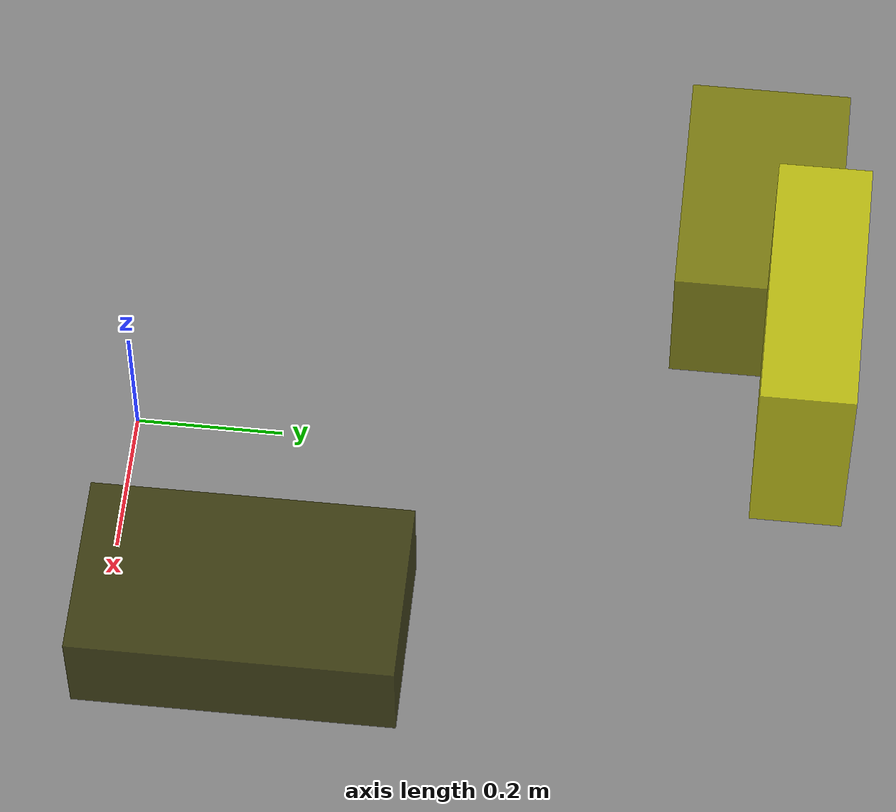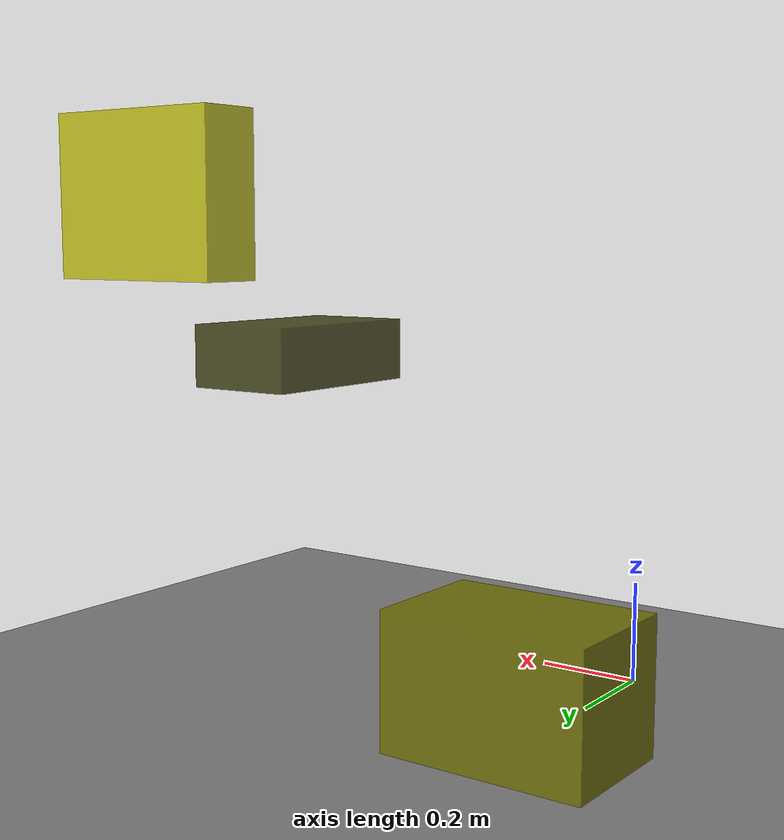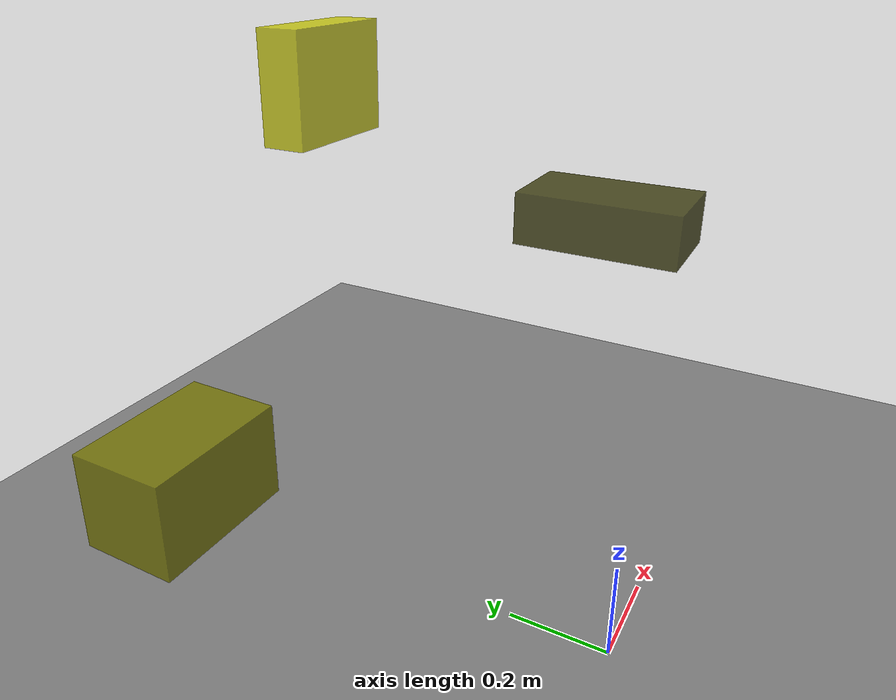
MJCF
<?xml version="1.0"?>
<mujoco model="obstacle_scene">
  <compiler angle="radian" coordinate="local"/>
  <option timestep="0.001" gravity="0 0 -9.81"/>

  <asset>
    <material name="obstacle_mat" rgba="0.8 0.8 0.0 0.8"/>
    <material name="ground_mat" rgba="0.5 0.5 0.5 1"/>
  </asset>

  <worldbody>
    <!-- Ground plane -->
    <geom name="ground" type="plane" size="3 3 0.1" material="ground_mat"/>

    <!-- Obstacles -->
    <body name="obstacle_0" pos="0.637517 0.257874 0.641857">
      <geom name="obs_0" type="box" size="0.111406 0.192223 0.062635" rgba="0.2 0.2 0.0 0.8"/>
    </body>
    <body name="obstacle_1" pos="-0.220493 0.827701 0.257506">
      <geom name="obs_1" type="box" size="0.160269 0.105957 0.104847" rgba="0.5 0.5 0.0 0.8"/>
    </body>
    <body name="obstacle_2" pos="0.402939 0.892323 0.939725">
      <geom name="obs_2" type="box" size="0.157480 0.052995 0.129676" rgba="0.8 0.8 0.0 0.8"/>
    </body>
  </worldbody>
</mujoco>
